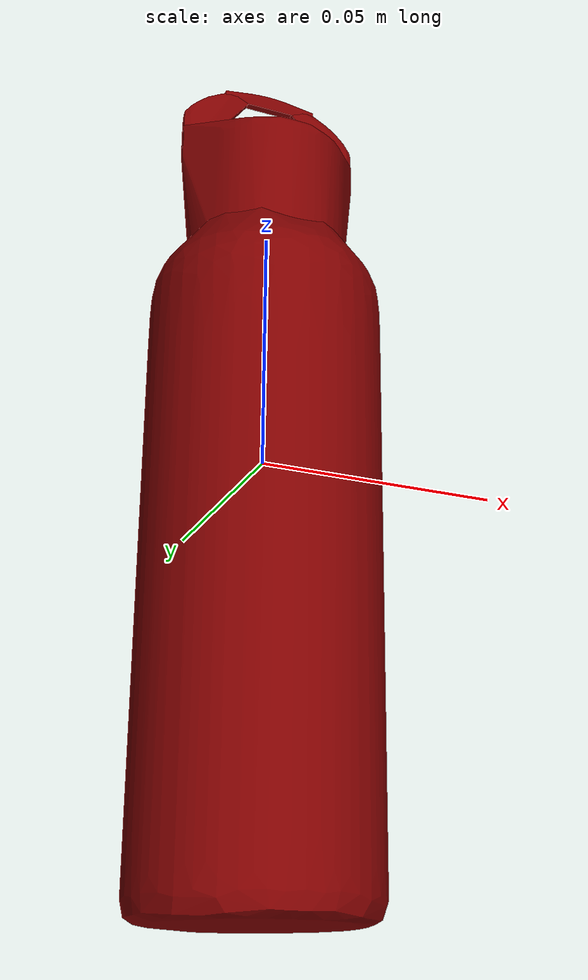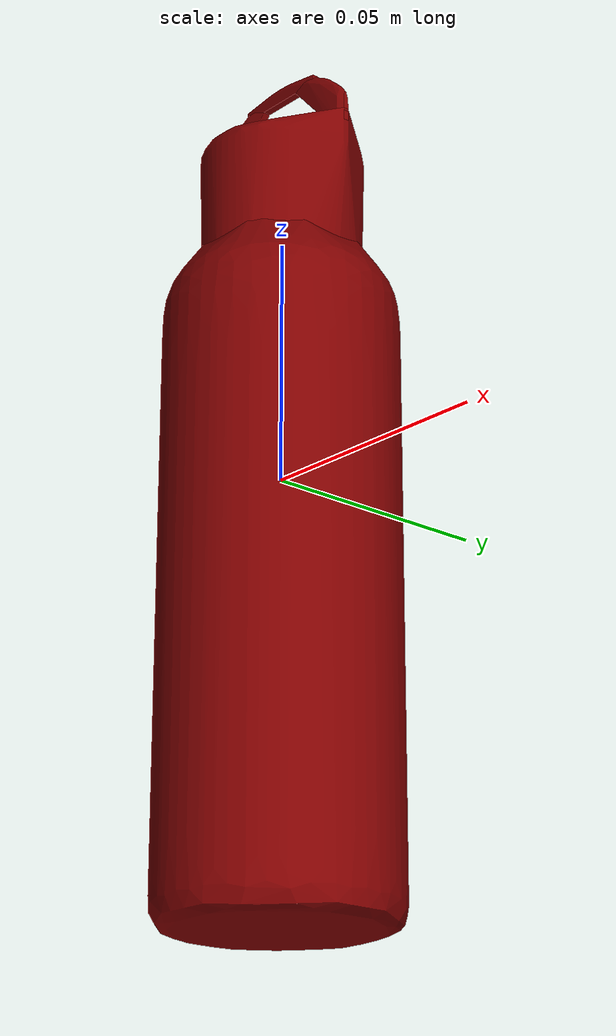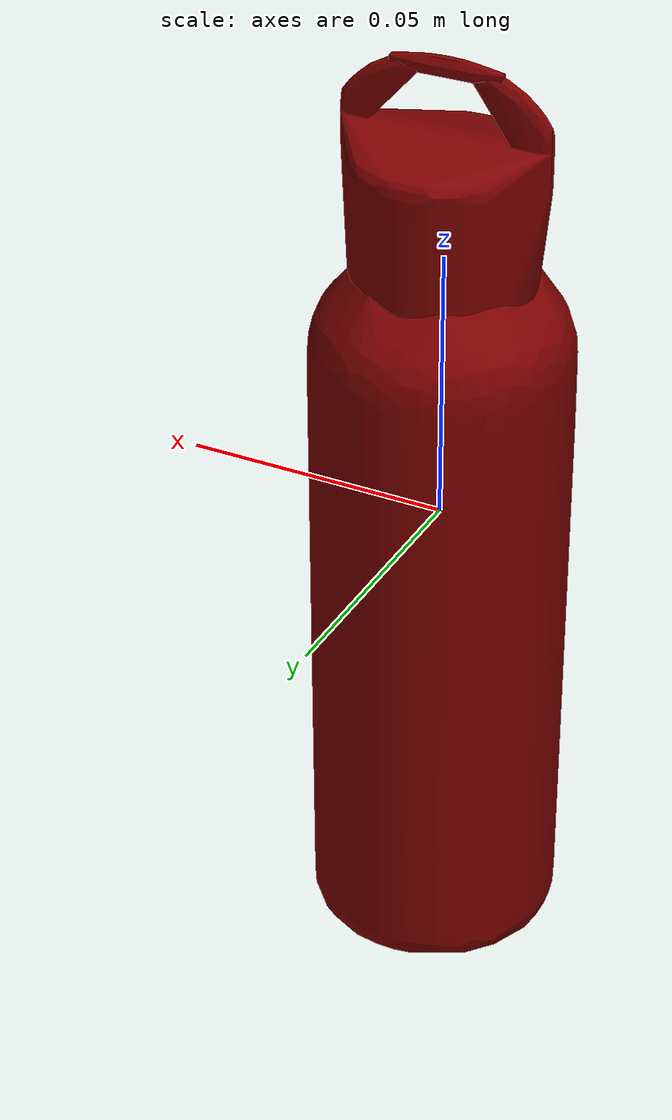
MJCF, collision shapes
<?xml version='1.0' encoding='utf-8'?>
<mujoco model="water_bottle_15">
  <asset>
    <mesh file="visual/model_normalized_0.obj" name="model_normalized_0_vis" scale="0.17000000000000004 0.17000000000000004 0.17000000000000004" refquat="1.0 0.0 0.0 0.0" />
    <texture type="2d" name="image0" file="visual/image0.png" />
    <material name="Botella_Thermo_Shading" texture="image0" specular="0.5" shininess="0.25" />
    <mesh file="collision/collision_mesh_collision_0.obj" name="water_collision_mesh_0" scale="0.17000000000000004 0.17000000000000004 0.17000000000000004" refquat="1.0 0.0 0.0 0.0" />
    <mesh file="collision/collision_mesh_collision_1.obj" name="water_collision_mesh_1" scale="0.17000000000000004 0.17000000000000004 0.17000000000000004" refquat="1.0 0.0 0.0 0.0" />
    <mesh file="collision/collision_mesh_collision_2.obj" name="water_collision_mesh_2" scale="0.17000000000000004 0.17000000000000004 0.17000000000000004" refquat="1.0 0.0 0.0 0.0" />
    <mesh file="collision/collision_mesh_collision_3.obj" name="water_collision_mesh_3" scale="0.17000000000000004 0.17000000000000004 0.17000000000000004" refquat="1.0 0.0 0.0 0.0" />
    <mesh file="collision/collision_mesh_collision_4.obj" name="water_collision_mesh_4" scale="0.17000000000000004 0.17000000000000004 0.17000000000000004" refquat="1.0 0.0 0.0 0.0" />
    </asset>
  <default>
    <default class="region">
      <geom group="1" conaffinity="0" contype="0" rgba="0 1 0 0" />
      </default>
    <default class="collision">
      <geom group="0" rgba="0.5 0 0 0.5" density="1000.0" />
      </default>
    </default>
  <worldbody>
    <body>
      <body name="object">
        <geom solimp="0.998 0.998 0.001" solref="0.001 1" density="100" friction="0.95 0.3 0.1" type="mesh" mesh="model_normalized_0_vis" conaffinity="0" contype="0" group="1" material="Botella_Thermo_Shading" />
        <geom class="region" name="reg_bbox" type="box" pos="0.0002815514500000008 2.324750000000792e-06 -0.000606162200000003" size="0.022206695400000004 0.022211344900000003 0.08439383780000001" />
        <geom mesh="water_collision_mesh_0" type="mesh" class="collision" />
        <geom mesh="water_collision_mesh_1" type="mesh" class="collision" />
        <geom mesh="water_collision_mesh_2" type="mesh" class="collision" />
        <geom mesh="water_collision_mesh_3" type="mesh" class="collision" />
        <geom mesh="water_collision_mesh_4" type="mesh" class="collision" />
        </body>
      </body>
    </worldbody>
  </mujoco>
